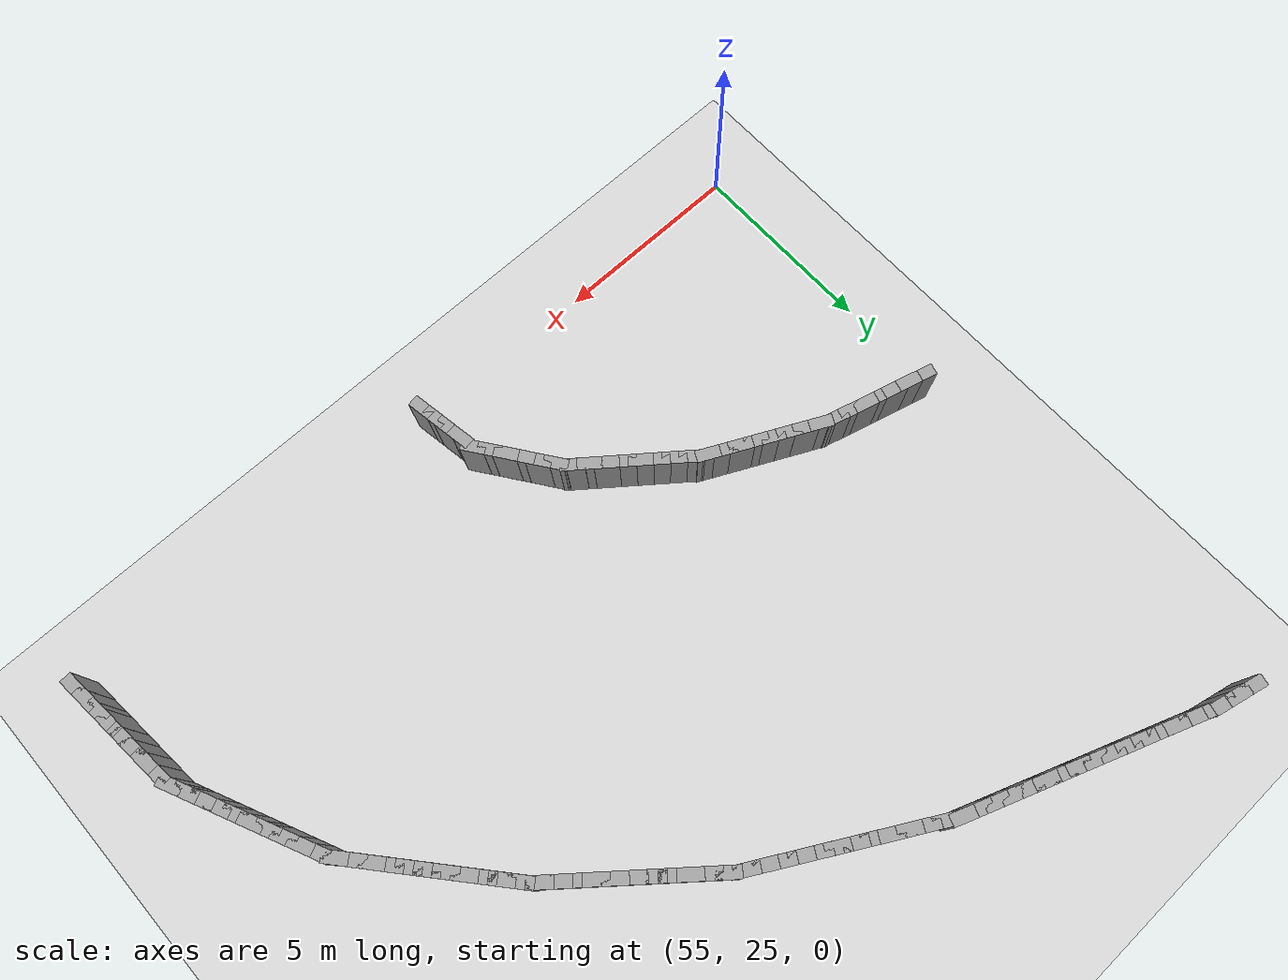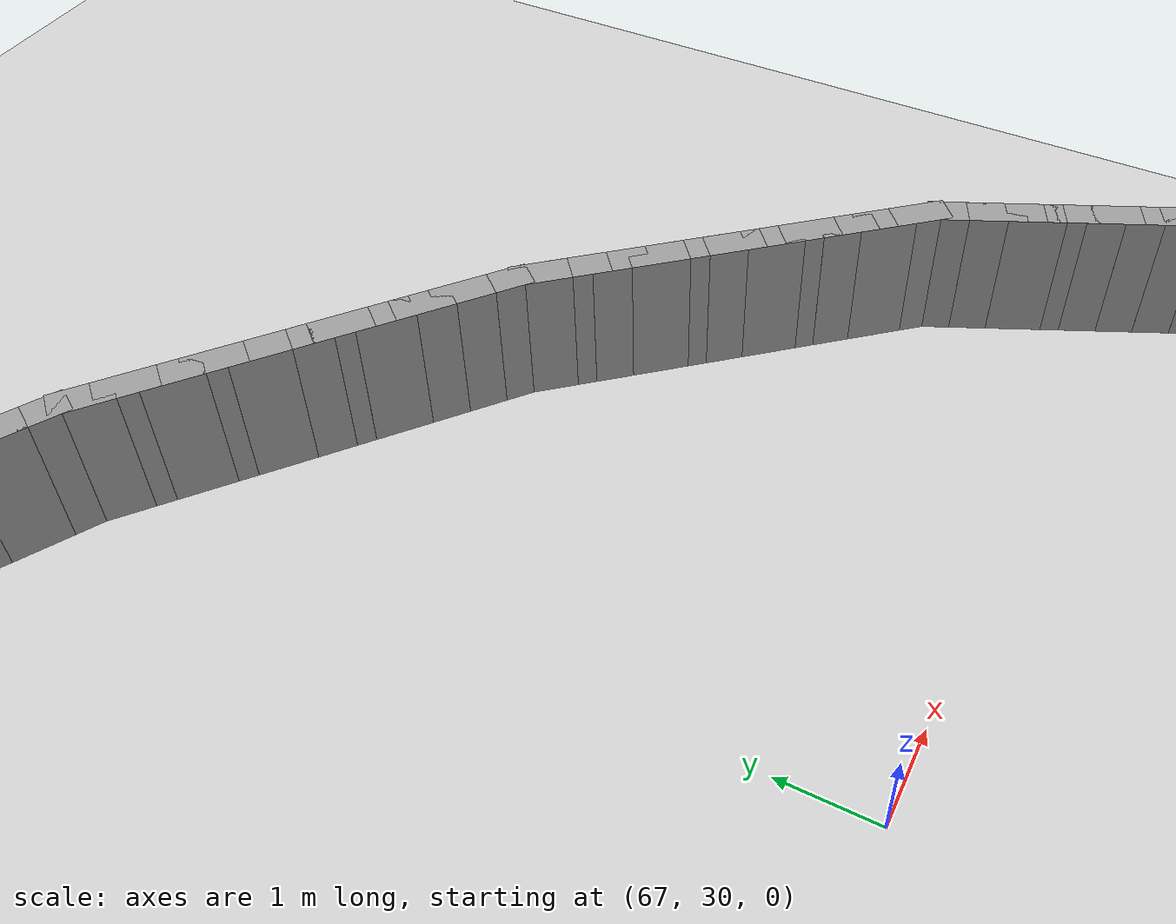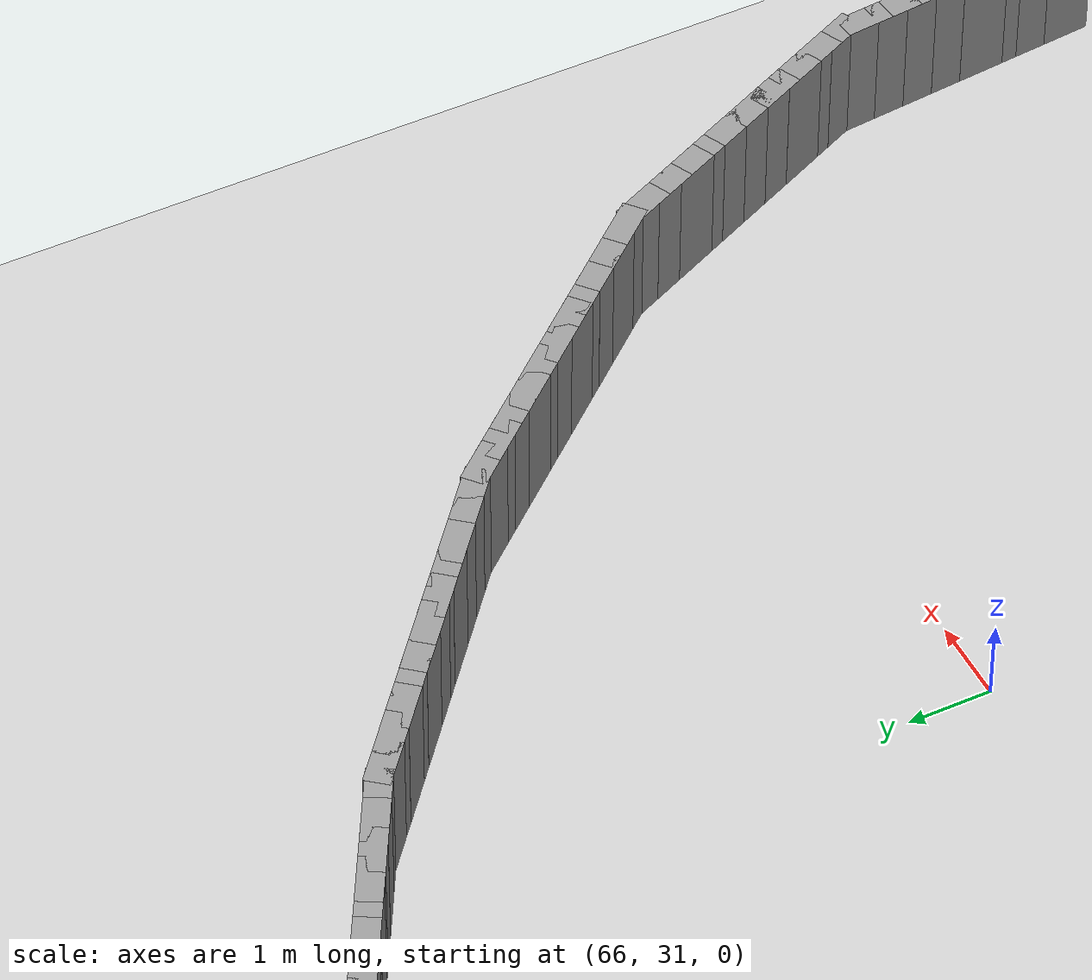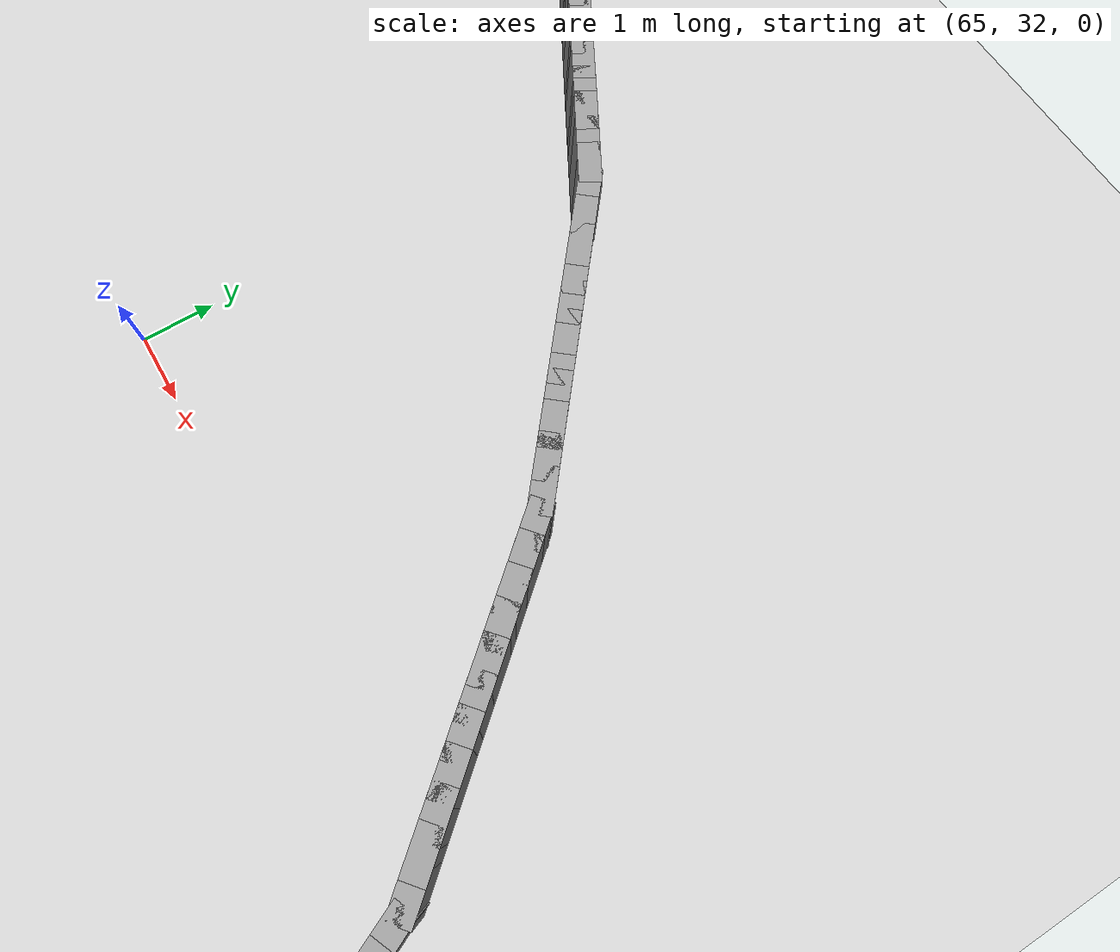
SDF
<sdf version="1.5">
 <world name="img_ellipse_obs">
  <include><uri>model://sun</uri></include>
  <include><uri>model://ground_plane</uri></include>
  <model name="wallL_226">
   <static>true</static>
   <pose>74.798 25.103 0.750 0 0 1.659</pose>
   <link name="link">
    <collision name="col"><geometry><box><size>0.600 0.300 1.500</size></box></geometry></collision>
    <visual name="vis">
     <geometry><box><size>0.600 0.300 1.500</size></box></geometry>
     <material><ambient>0.6 0.6 0.6 1</ambient><diffuse>0.6 0.6 0.6 1</diffuse></material>
    </visual>
   </link>
  </model>
  <model name="wallL_227">
   <static>true</static>
   <pose>74.763 25.502 0.750 0 0 1.659</pose>
   <link name="link">
    <collision name="col"><geometry><box><size>0.600 0.300 1.500</size></box></geometry></collision>
    <visual name="vis">
     <geometry><box><size>0.600 0.300 1.500</size></box></geometry>
     <material><ambient>0.6 0.6 0.6 1</ambient><diffuse>0.6 0.6 0.6 1</diffuse></material>
    </visual>
   </link>
  </model>
  <model name="wallL_228">
   <static>true</static>
   <pose>74.728 25.900 0.750 0 0 1.659</pose>
   <link name="link">
    <collision name="col"><geometry><box><size>0.600 0.300 1.500</size></box></geometry></collision>
    <visual name="vis">
     <geometry><box><size>0.600 0.300 1.500</size></box></geometry>
     <material><ambient>0.6 0.6 0.6 1</ambient><diffuse>0.6 0.6 0.6 1</diffuse></material>
    </visual>
   </link>
  </model>
  <model name="wallL_229">
   <static>true</static>
   <pose>74.692 26.298 0.750 0 0 1.659</pose>
   <link name="link">
    <collision name="col"><geometry><box><size>0.600 0.300 1.500</size></box></geometry></collision>
    <visual name="vis">
     <geometry><box><size>0.600 0.300 1.500</size></box></geometry>
     <material><ambient>0.6 0.6 0.6 1</ambient><diffuse>0.6 0.6 0.6 1</diffuse></material>
    </visual>
   </link>
  </model>
  <model name="wallL_230">
   <static>true</static>
   <pose>74.657 26.697 0.750 0 0 1.659</pose>
   <link name="link">
    <collision name="col"><geometry><box><size>0.600 0.300 1.500</size></box></geometry></collision>
    <visual name="vis">
     <geometry><box><size>0.600 0.300 1.500</size></box></geometry>
     <material><ambient>0.6 0.6 0.6 1</ambient><diffuse>0.6 0.6 0.6 1</diffuse></material>
    </visual>
   </link>
  </model>
  <model name="wallL_231">
   <static>true</static>
   <pose>74.622 27.095 0.750 0 0 1.659</pose>
   <link name="link">
    <collision name="col"><geometry><box><size>0.600 0.300 1.500</size></box></geometry></collision>
    <visual name="vis">
     <geometry><box><size>0.600 0.300 1.500</size></box></geometry>
     <material><ambient>0.6 0.6 0.6 1</ambient><diffuse>0.6 0.6 0.6 1</diffuse></material>
    </visual>
   </link>
  </model>
  <model name="wallL_232">
   <static>true</static>
   <pose>74.587 27.494 0.750 0 0 1.659</pose>
   <link name="link">
    <collision name="col"><geometry><box><size>0.600 0.300 1.500</size></box></geometry></collision>
    <visual name="vis">
     <geometry><box><size>0.600 0.300 1.500</size></box></geometry>
     <material><ambient>0.6 0.6 0.6 1</ambient><diffuse>0.6 0.6 0.6 1</diffuse></material>
    </visual>
   </link>
  </model>
  <model name="wallL_233">
   <static>true</static>
   <pose>74.552 27.892 0.750 0 0 1.659</pose>
   <link name="link">
    <collision name="col"><geometry><box><size>0.600 0.300 1.500</size></box></geometry></collision>
    <visual name="vis">
     <geometry><box><size>0.600 0.300 1.500</size></box></geometry>
     <material><ambient>0.6 0.6 0.6 1</ambient><diffuse>0.6 0.6 0.6 1</diffuse></material>
    </visual>
   </link>
  </model>
  <model name="wallL_234">
   <static>true</static>
   <pose>74.487 28.283 0.750 0 0 1.997</pose>
   <link name="link">
    <collision name="col"><geometry><box><size>0.600 0.300 1.500</size></box></geometry></collision>
    <visual name="vis">
     <geometry><box><size>0.600 0.300 1.500</size></box></geometry>
     <material><ambient>0.6 0.6 0.6 1</ambient><diffuse>0.6 0.6 0.6 1</diffuse></material>
    </visual>
   </link>
  </model>
  <model name="wallL_235">
   <static>true</static>
   <pose>74.322 28.647 0.750 0 0 1.997</pose>
   <link name="link">
    <collision name="col"><geometry><box><size>0.600 0.300 1.500</size></box></geometry></collision>
    <visual name="vis">
     <geometry><box><size>0.600 0.300 1.500</size></box></geometry>
     <material><ambient>0.6 0.6 0.6 1</ambient><diffuse>0.6 0.6 0.6 1</diffuse></material>
    </visual>
   </link>
  </model>
  <model name="wallL_236">
   <static>true</static>
   <pose>74.156 29.011 0.750 0 0 1.997</pose>
   <link name="link">
    <collision name="col"><geometry><box><size>0.600 0.300 1.500</size></box></geometry></collision>
    <visual name="vis">
     <geometry><box><size>0.600 0.300 1.500</size></box></geometry>
     <material><ambient>0.6 0.6 0.6 1</ambient><diffuse>0.6 0.6 0.6 1</diffuse></material>
    </visual>
   </link>
  </model>
  <model name="wallL_237">
   <static>true</static>
   <pose>73.991 29.376 0.750 0 0 1.997</pose>
   <link name="link">
    <collision name="col"><geometry><box><size>0.600 0.300 1.500</size></box></geometry></collision>
    <visual name="vis">
     <geometry><box><size>0.600 0.300 1.500</size></box></geometry>
     <material><ambient>0.6 0.6 0.6 1</ambient><diffuse>0.6 0.6 0.6 1</diffuse></material>
    </visual>
   </link>
  </model>
  <model name="wallL_238">
   <static>true</static>
   <pose>73.826 29.740 0.750 0 0 1.997</pose>
   <link name="link">
    <collision name="col"><geometry><box><size>0.600 0.300 1.500</size></box></geometry></collision>
    <visual name="vis">
     <geometry><box><size>0.600 0.300 1.500</size></box></geometry>
     <material><ambient>0.6 0.6 0.6 1</ambient><diffuse>0.6 0.6 0.6 1</diffuse></material>
    </visual>
   </link>
  </model>
  <model name="wallL_239">
   <static>true</static>
   <pose>73.661 30.104 0.750 0 0 1.997</pose>
   <link name="link">
    <collision name="col"><geometry><box><size>0.600 0.300 1.500</size></box></geometry></collision>
    <visual name="vis">
     <geometry><box><size>0.600 0.300 1.500</size></box></geometry>
     <material><ambient>0.6 0.6 0.6 1</ambient><diffuse>0.6 0.6 0.6 1</diffuse></material>
    </visual>
   </link>
  </model>
  <model name="wallL_240">
   <static>true</static>
   <pose>73.496 30.468 0.750 0 0 1.997</pose>
   <link name="link">
    <collision name="col"><geometry><box><size>0.600 0.300 1.500</size></box></geometry></collision>
    <visual name="vis">
     <geometry><box><size>0.600 0.300 1.500</size></box></geometry>
     <material><ambient>0.6 0.6 0.6 1</ambient><diffuse>0.6 0.6 0.6 1</diffuse></material>
    </visual>
   </link>
  </model>
  <model name="wallL_241">
   <static>true</static>
   <pose>73.330 30.833 0.750 0 0 1.997</pose>
   <link name="link">
    <collision name="col"><geometry><box><size>0.600 0.300 1.500</size></box></geometry></collision>
    <visual name="vis">
     <geometry><box><size>0.600 0.300 1.500</size></box></geometry>
     <material><ambient>0.6 0.6 0.6 1</ambient><diffuse>0.6 0.6 0.6 1</diffuse></material>
    </visual>
   </link>
  </model>
  <model name="wallL_242">
   <static>true</static>
   <pose>73.165 31.197 0.750 0 0 1.997</pose>
   <link name="link">
    <collision name="col"><geometry><box><size>0.600 0.300 1.500</size></box></geometry></collision>
    <visual name="vis">
     <geometry><box><size>0.600 0.300 1.500</size></box></geometry>
     <material><ambient>0.6 0.6 0.6 1</ambient><diffuse>0.6 0.6 0.6 1</diffuse></material>
    </visual>
   </link>
  </model>
  <model name="wallL_243">
   <static>true</static>
   <pose>73.000 31.561 0.750 0 0 1.997</pose>
   <link name="link">
    <collision name="col"><geometry><box><size>0.600 0.300 1.500</size></box></geometry></collision>
    <visual name="vis">
     <geometry><box><size>0.600 0.300 1.500</size></box></geometry>
     <material><ambient>0.6 0.6 0.6 1</ambient><diffuse>0.6 0.6 0.6 1</diffuse></material>
    </visual>
   </link>
  </model>
  <model name="wallL_244">
   <static>true</static>
   <pose>72.792 31.898 0.750 0 0 2.273</pose>
   <link name="link">
    <collision name="col"><geometry><box><size>0.600 0.300 1.500</size></box></geometry></collision>
    <visual name="vis">
     <geometry><box><size>0.600 0.300 1.500</size></box></geometry>
     <material><ambient>0.6 0.6 0.6 1</ambient><diffuse>0.6 0.6 0.6 1</diffuse></material>
    </visual>
   </link>
  </model>
  <model name="wallL_245">
   <static>true</static>
   <pose>72.533 32.204 0.750 0 0 2.273</pose>
   <link name="link">
    <collision name="col"><geometry><box><size>0.600 0.300 1.500</size></box></geometry></collision>
    <visual name="vis">
     <geometry><box><size>0.600 0.300 1.500</size></box></geometry>
     <material><ambient>0.6 0.6 0.6 1</ambient><diffuse>0.6 0.6 0.6 1</diffuse></material>
    </visual>
   </link>
  </model>
  <model name="wallL_246">
   <static>true</static>
   <pose>72.275 32.509 0.750 0 0 2.273</pose>
   <link name="link">
    <collision name="col"><geometry><box><size>0.600 0.300 1.500</size></box></geometry></collision>
    <visual name="vis">
     <geometry><box><size>0.600 0.300 1.500</size></box></geometry>
     <material><ambient>0.6 0.6 0.6 1</ambient><diffuse>0.6 0.6 0.6 1</diffuse></material>
    </visual>
   </link>
  </model>
  <model name="wallL_247">
   <static>true</static>
   <pose>72.017 32.815 0.750 0 0 2.273</pose>
   <link name="link">
    <collision name="col"><geometry><box><size>0.600 0.300 1.500</size></box></geometry></collision>
    <visual name="vis">
     <geometry><box><size>0.600 0.300 1.500</size></box></geometry>
     <material><ambient>0.6 0.6 0.6 1</ambient><diffuse>0.6 0.6 0.6 1</diffuse></material>
    </visual>
   </link>
  </model>
  <model name="wallL_248">
   <static>true</static>
   <pose>71.758 33.120 0.750 0 0 2.273</pose>
   <link name="link">
    <collision name="col"><geometry><box><size>0.600 0.300 1.500</size></box></geometry></collision>
    <visual name="vis">
     <geometry><box><size>0.600 0.300 1.500</size></box></geometry>
     <material><ambient>0.6 0.6 0.6 1</ambient><diffuse>0.6 0.6 0.6 1</diffuse></material>
    </visual>
   </link>
  </model>
  <model name="wallL_249">
   <static>true</static>
   <pose>71.500 33.425 0.750 0 0 2.273</pose>
   <link name="link">
    <collision name="col"><geometry><box><size>0.600 0.300 1.500</size></box></geometry></collision>
    <visual name="vis">
     <geometry><box><size>0.600 0.300 1.500</size></box></geometry>
     <material><ambient>0.6 0.6 0.6 1</ambient><diffuse>0.6 0.6 0.6 1</diffuse></material>
    </visual>
   </link>
  </model>
  <model name="wallL_250">
   <static>true</static>
   <pose>71.242 33.731 0.750 0 0 2.273</pose>
   <link name="link">
    <collision name="col"><geometry><box><size>0.600 0.300 1.500</size></box></geometry></collision>
    <visual name="vis">
     <geometry><box><size>0.600 0.300 1.500</size></box></geometry>
     <material><ambient>0.6 0.6 0.6 1</ambient><diffuse>0.6 0.6 0.6 1</diffuse></material>
    </visual>
   </link>
  </model>
  <model name="wallL_251">
   <static>true</static>
   <pose>70.983 34.036 0.750 0 0 2.273</pose>
   <link name="link">
    <collision name="col"><geometry><box><size>0.600 0.300 1.500</size></box></geometry></collision>
    <visual name="vis">
     <geometry><box><size>0.600 0.300 1.500</size></box></geometry>
     <material><ambient>0.6 0.6 0.6 1</ambient><diffuse>0.6 0.6 0.6 1</diffuse></material>
    </visual>
   </link>
  </model>
  <model name="wallL_252">
   <static>true</static>
   <pose>70.725 34.341 0.750 0 0 2.273</pose>
   <link name="link">
    <collision name="col"><geometry><box><size>0.600 0.300 1.500</size></box></geometry></collision>
    <visual name="vis">
     <geometry><box><size>0.600 0.300 1.500</size></box></geometry>
     <material><ambient>0.6 0.6 0.6 1</ambient><diffuse>0.6 0.6 0.6 1</diffuse></material>
    </visual>
   </link>
  </model>
  <model name="wallL_253">
   <static>true</static>
   <pose>70.467 34.647 0.750 0 0 2.273</pose>
   <link name="link">
    <collision name="col"><geometry><box><size>0.600 0.300 1.500</size></box></geometry></collision>
    <visual name="vis">
     <geometry><box><size>0.600 0.300 1.500</size></box></geometry>
     <material><ambient>0.6 0.6 0.6 1</ambient><diffuse>0.6 0.6 0.6 1</diffuse></material>
    </visual>
   </link>
  </model>
  <model name="wallL_254">
   <static>true</static>
   <pose>70.208 34.952 0.750 0 0 2.273</pose>
   <link name="link">
    <collision name="col"><geometry><box><size>0.600 0.300 1.500</size></box></geometry></collision>
    <visual name="vis">
     <geometry><box><size>0.600 0.300 1.500</size></box></geometry>
     <material><ambient>0.6 0.6 0.6 1</ambient><diffuse>0.6 0.6 0.6 1</diffuse></material>
    </visual>
   </link>
  </model>
  <model name="wallL_255">
   <static>true</static>
   <pose>69.924 35.231 0.750 0 0 2.446</pose>
   <link name="link">
    <collision name="col"><geometry><box><size>0.600 0.300 1.500</size></box></geometry></collision>
    <visual name="vis">
     <geometry><box><size>0.600 0.300 1.500</size></box></geometry>
     <material><ambient>0.6 0.6 0.6 1</ambient><diffuse>0.6 0.6 0.6 1</diffuse></material>
    </visual>
   </link>
  </model>
  <model name="wallL_256">
   <static>true</static>
   <pose>69.616 35.488 0.750 0 0 2.446</pose>
   <link name="link">
    <collision name="col"><geometry><box><size>0.600 0.300 1.500</size></box></geometry></collision>
    <visual name="vis">
     <geometry><box><size>0.600 0.300 1.500</size></box></geometry>
     <material><ambient>0.6 0.6 0.6 1</ambient><diffuse>0.6 0.6 0.6 1</diffuse></material>
    </visual>
   </link>
  </model>
  <model name="wallL_257">
   <static>true</static>
   <pose>69.309 35.744 0.750 0 0 2.446</pose>
   <link name="link">
    <collision name="col"><geometry><box><size>0.600 0.300 1.500</size></box></geometry></collision>
    <visual name="vis">
     <geometry><box><size>0.600 0.300 1.500</size></box></geometry>
     <material><ambient>0.6 0.6 0.6 1</ambient><diffuse>0.6 0.6 0.6 1</diffuse></material>
    </visual>
   </link>
  </model>
  <model name="wallL_258">
   <static>true</static>
   <pose>69.002 36.000 0.750 0 0 2.446</pose>
   <link name="link">
    <collision name="col"><geometry><box><size>0.600 0.300 1.500</size></box></geometry></collision>
    <visual name="vis">
     <geometry><box><size>0.600 0.300 1.500</size></box></geometry>
     <material><ambient>0.6 0.6 0.6 1</ambient><diffuse>0.6 0.6 0.6 1</diffuse></material>
    </visual>
   </link>
  </model>
  <model name="wallL_259">
   <static>true</static>
   <pose>68.695 36.257 0.750 0 0 2.446</pose>
   <link name="link">
    <collision name="col"><geometry><box><size>0.600 0.300 1.500</size></box></geometry></collision>
    <visual name="vis">
     <geometry><box><size>0.600 0.300 1.500</size></box></geometry>
     <material><ambient>0.6 0.6 0.6 1</ambient><diffuse>0.6 0.6 0.6 1</diffuse></material>
    </visual>
   </link>
  </model>
  <model name="wallL_260">
   <static>true</static>
   <pose>68.388 36.513 0.750 0 0 2.446</pose>
   <link name="link">
    <collision name="col"><geometry><box><size>0.600 0.300 1.500</size></box></geometry></collision>
    <visual name="vis">
     <geometry><box><size>0.600 0.300 1.500</size></box></geometry>
     <material><ambient>0.6 0.6 0.6 1</ambient><diffuse>0.6 0.6 0.6 1</diffuse></material>
    </visual>
   </link>
  </model>
  <model name="wallL_261">
   <static>true</static>
   <pose>68.081 36.769 0.750 0 0 2.446</pose>
   <link name="link">
    <collision name="col"><geometry><box><size>0.600 0.300 1.500</size></box></geometry></collision>
    <visual name="vis">
     <geometry><box><size>0.600 0.300 1.500</size></box></geometry>
     <material><ambient>0.6 0.6 0.6 1</ambient><diffuse>0.6 0.6 0.6 1</diffuse></material>
    </visual>
   </link>
  </model>
  <model name="wallL_262">
   <static>true</static>
   <pose>67.774 37.026 0.750 0 0 2.446</pose>
   <link name="link">
    <collision name="col"><geometry><box><size>0.600 0.300 1.500</size></box></geometry></collision>
    <visual name="vis">
     <geometry><box><size>0.600 0.300 1.500</size></box></geometry>
     <material><ambient>0.6 0.6 0.6 1</ambient><diffuse>0.6 0.6 0.6 1</diffuse></material>
    </visual>
   </link>
  </model>
  <model name="wallL_263">
   <static>true</static>
   <pose>67.467 37.282 0.750 0 0 2.446</pose>
   <link name="link">
    <collision name="col"><geometry><box><size>0.600 0.300 1.500</size></box></geometry></collision>
    <visual name="vis">
     <geometry><box><size>0.600 0.300 1.500</size></box></geometry>
     <material><ambient>0.6 0.6 0.6 1</ambient><diffuse>0.6 0.6 0.6 1</diffuse></material>
    </visual>
   </link>
  </model>
  <model name="wallL_264">
   <static>true</static>
   <pose>67.160 37.539 0.750 0 0 2.446</pose>
   <link name="link">
    <collision name="col"><geometry><box><size>0.600 0.300 1.500</size></box></geometry></collision>
    <visual name="vis">
     <geometry><box><size>0.600 0.300 1.500</size></box></geometry>
     <material><ambient>0.6 0.6 0.6 1</ambient><diffuse>0.6 0.6 0.6 1</diffuse></material>
    </visual>
   </link>
  </model>
  <model name="wallL_265">
   <static>true</static>
   <pose>66.853 37.795 0.750 0 0 2.446</pose>
   <link name="link">
    <collision name="col"><geometry><box><size>0.600 0.300 1.500</size></box></geometry></collision>
    <visual name="vis">
     <geometry><box><size>0.600 0.300 1.500</size></box></geometry>
     <material><ambient>0.6 0.6 0.6 1</ambient><diffuse>0.6 0.6 0.6 1</diffuse></material>
    </visual>
   </link>
  </model>
  <model name="wallL_266">
   <static>true</static>
   <pose>66.524 38.020 0.750 0 0 2.625</pose>
   <link name="link">
    <collision name="col"><geometry><box><size>0.600 0.300 1.500</size></box></geometry></collision>
    <visual name="vis">
     <geometry><box><size>0.600 0.300 1.500</size></box></geometry>
     <material><ambient>0.6 0.6 0.6 1</ambient><diffuse>0.6 0.6 0.6 1</diffuse></material>
    </visual>
   </link>
  </model>
  <model name="wallL_267">
   <static>true</static>
   <pose>66.176 38.217 0.750 0 0 2.625</pose>
   <link name="link">
    <collision name="col"><geometry><box><size>0.600 0.300 1.500</size></box></geometry></collision>
    <visual name="vis">
     <geometry><box><size>0.600 0.300 1.500</size></box></geometry>
     <material><ambient>0.6 0.6 0.6 1</ambient><diffuse>0.6 0.6 0.6 1</diffuse></material>
    </visual>
   </link>
  </model>
  <model name="wallL_268">
   <static>true</static>
   <pose>65.829 38.415 0.750 0 0 2.625</pose>
   <link name="link">
    <collision name="col"><geometry><box><size>0.600 0.300 1.500</size></box></geometry></collision>
    <visual name="vis">
     <geometry><box><size>0.600 0.300 1.500</size></box></geometry>
     <material><ambient>0.6 0.6 0.6 1</ambient><diffuse>0.6 0.6 0.6 1</diffuse></material>
    </visual>
   </link>
  </model>
  <model name="wallL_269">
   <static>true</static>
   <pose>65.481 38.613 0.750 0 0 2.625</pose>
   <link name="link">
    <collision name="col"><geometry><box><size>0.600 0.300 1.500</size></box></geometry></collision>
    <visual name="vis">
     <geometry><box><size>0.600 0.300 1.500</size></box></geometry>
     <material><ambient>0.6 0.6 0.6 1</ambient><diffuse>0.6 0.6 0.6 1</diffuse></material>
    </visual>
   </link>
  </model>
  <model name="wallL_270">
   <static>true</static>
   <pose>65.133 38.810 0.750 0 0 2.625</pose>
   <link name="link">
    <collision name="col"><geometry><box><size>0.600 0.300 1.500</size></box></geometry></collision>
    <visual name="vis">
     <geometry><box><size>0.600 0.300 1.500</size></box></geometry>
     <material><ambient>0.6 0.6 0.6 1</ambient><diffuse>0.6 0.6 0.6 1</diffuse></material>
    </visual>
   </link>
  </model>
  <model name="wallL_271">
   <static>true</static>
   <pose>64.785 39.008 0.750 0 0 2.625</pose>
   <link name="link">
    <collision name="col"><geometry><box><size>0.600 0.300 1.500</size></box></geometry></collision>
    <visual name="vis">
     <geometry><box><size>0.600 0.300 1.500</size></box></geometry>
     <material><ambient>0.6 0.6 0.6 1</ambient><diffuse>0.6 0.6 0.6 1</diffuse></material>
    </visual>
   </link>
  </model>
  <model name="wallL_272">
   <static>true</static>
   <pose>64.438 39.205 0.750 0 0 2.625</pose>
   <link name="link">
    <collision name="col"><geometry><box><size>0.600 0.300 1.500</size></box></geometry></collision>
    <visual name="vis">
     <geometry><box><size>0.600 0.300 1.500</size></box></geometry>
     <material><ambient>0.6 0.6 0.6 1</ambient><diffuse>0.6 0.6 0.6 1</diffuse></material>
    </visual>
   </link>
  </model>
  <model name="wallL_273">
   <static>true</static>
   <pose>64.090 39.403 0.750 0 0 2.625</pose>
   <link name="link">
    <collision name="col"><geometry><box><size>0.600 0.300 1.500</size></box></geometry></collision>
    <visual name="vis">
     <geometry><box><size>0.600 0.300 1.500</size></box></geometry>
     <material><ambient>0.6 0.6 0.6 1</ambient><diffuse>0.6 0.6 0.6 1</diffuse></material>
    </visual>
   </link>
  </model>
  <model name="wallL_274">
   <static>true</static>
   <pose>63.742 39.601 0.750 0 0 2.625</pose>
   <link name="link">
    <collision name="col"><geometry><box><size>0.600 0.300 1.500</size></box></geometry></collision>
    <visual name="vis">
     <geometry><box><size>0.600 0.300 1.500</size></box></geometry>
     <material><ambient>0.6 0.6 0.6 1</ambient><diffuse>0.6 0.6 0.6 1</diffuse></material>
    </visual>
   </link>
  </model>
  <model name="wallL_275">
   <static>true</static>
   <pose>63.394 39.798 0.750 0 0 2.625</pose>
   <link name="link">
    <collision name="col"><geometry><box><size>0.600 0.300 1.500</size></box></geometry></collision>
    <visual name="vis">
     <geometry><box><size>0.600 0.300 1.500</size></box></geometry>
     <material><ambient>0.6 0.6 0.6 1</ambient><diffuse>0.6 0.6 0.6 1</diffuse></material>
    </visual>
   </link>
  </model>
  <model name="wallL_276">
   <static>true</static>
   <pose>63.047 39.996 0.750 0 0 2.625</pose>
   <link name="link">
    <collision name="col"><geometry><box><size>0.600 0.300 1.500</size></box></geometry></collision>
    <visual name="vis">
     <geometry><box><size>0.600 0.300 1.500</size></box></geometry>
     <material><ambient>0.6 0.6 0.6 1</ambient><diffuse>0.6 0.6 0.6 1</diffuse></material>
    </visual>
   </link>
  </model>
  <model name="wallL_277">
   <static>true</static>
   <pose>62.699 40.194 0.750 0 0 2.625</pose>
   <link name="link">
    <collision name="col"><geometry><box><size>0.600 0.300 1.500</size></box></geometry></collision>
    <visual name="vis">
     <geometry><box><size>0.600 0.300 1.500</size></box></geometry>
     <material><ambient>0.6 0.6 0.6 1</ambient><diffuse>0.6 0.6 0.6 1</diffuse></material>
    </visual>
   </link>
  </model>
  <model name="wallL_278">
   <static>true</static>
   <pose>62.349 40.387 0.750 0 0 2.776</pose>
   <link name="link">
    <collision name="col"><geometry><box><size>0.600 0.300 1.500</size></box></geometry></collision>
    <visual name="vis">
     <geometry><box><size>0.600 0.300 1.500</size></box></geometry>
     <material><ambient>0.6 0.6 0.6 1</ambient><diffuse>0.6 0.6 0.6 1</diffuse></material>
    </visual>
   </link>
  </model>
  <model name="wallL_279">
   <static>true</static>
   <pose>61.975 40.530 0.750 0 0 2.776</pose>
   <link name="link">
    <collision name="col"><geometry><box><size>0.600 0.300 1.500</size></box></geometry></collision>
    <visual name="vis">
     <geometry><box><size>0.600 0.300 1.500</size></box></geometry>
     <material><ambient>0.6 0.6 0.6 1</ambient><diffuse>0.6 0.6 0.6 1</diffuse></material>
    </visual>
   </link>
  </model>
  <model name="wallL_280">
   <static>true</static>
   <pose>61.602 40.673 0.750 0 0 2.776</pose>
   <link name="link">
    <collision name="col"><geometry><box><size>0.600 0.300 1.500</size></box></geometry></collision>
    <visual name="vis">
     <geometry><box><size>0.600 0.300 1.500</size></box></geometry>
     <material><ambient>0.6 0.6 0.6 1</ambient><diffuse>0.6 0.6 0.6 1</diffuse></material>
    </visual>
   </link>
  </model>
  <model name="wallL_281">
   <static>true</static>
   <pose>61.228 40.815 0.750 0 0 2.776</pose>
   <link name="link">
    <collision name="col"><geometry><box><size>0.600 0.300 1.500</size></box></geometry></collision>
    <visual name="vis">
     <geometry><box><size>0.600 0.300 1.500</size></box></geometry>
     <material><ambient>0.6 0.6 0.6 1</ambient><diffuse>0.6 0.6 0.6 1</diffuse></material>
    </visual>
   </link>
  </model>
  <model name="wallL_282">
   <static>true</static>
   <pose>60.854 40.958 0.750 0 0 2.776</pose>
   <link name="link">
    <collision name="col"><geometry><box><size>0.600 0.300 1.500</size></box></geometry></collision>
    <visual name="vis">
     <geometry><box><size>0.600 0.300 1.500</size></box></geometry>
     <material><ambient>0.6 0.6 0.6 1</ambient><diffuse>0.6 0.6 0.6 1</diffuse></material>
    </visual>
   </link>
  </model>
  <model name="wallL_283">
   <static>true</static>
   <pose>60.481 41.101 0.750 0 0 2.776</pose>
   <link name="link">
    <collision name="col"><geometry><box><size>0.600 0.300 1.500</size></box></geometry></collision>
    <visual name="vis">
     <geometry><box><size>0.600 0.300 1.500</size></box></geometry>
     <material><ambient>0.6 0.6 0.6 1</ambient><diffuse>0.6 0.6 0.6 1</diffuse></material>
    </visual>
   </link>
  </model>
  <model name="wallL_284">
   <static>true</static>
   <pose>60.107 41.244 0.750 0 0 2.776</pose>
   <link name="link">
    <collision name="col"><geometry><box><size>0.600 0.300 1.500</size></box></geometry></collision>
    <visual name="vis">
     <geometry><box><size>0.600 0.300 1.500</size></box></geometry>
     <material><ambient>0.6 0.6 0.6 1</ambient><diffuse>0.6 0.6 0.6 1</diffuse></material>
    </visual>
   </link>
  </model>
  <model name="wallL_285">
   <static>true</static>
   <pose>59.734 41.387 0.750 0 0 2.776</pose>
   <link name="link">
    <collision name="col"><geometry><box><size>0.600 0.300 1.500</size></box></geometry></collision>
    <visual name="vis">
     <geometry><box><size>0.600 0.300 1.500</size></box></geometry>
     <material><ambient>0.6 0.6 0.6 1</ambient><diffuse>0.6 0.6 0.6 1</diffuse></material>
    </visual>
   </link>
  </model>
  <model name="wallL_286">
   <static>true</static>
   <pose>59.360 41.530 0.750 0 0 2.776</pose>
   <link name="link">
    <collision name="col"><geometry><box><size>0.600 0.300 1.500</size></box></geometry></collision>
    <visual name="vis">
     <geometry><box><size>0.600 0.300 1.500</size></box></geometry>
     <material><ambient>0.6 0.6 0.6 1</ambient><diffuse>0.6 0.6 0.6 1</diffuse></material>
    </visual>
   </link>
  </model>
  <model name="wallL_287">
   <static>true</static>
   <pose>58.986 41.673 0.750 0 0 2.776</pose>
   <link name="link">
    <collision name="col"><geometry><box><size>0.600 0.300 1.500</size></box></geometry></collision>
    <visual name="vis">
     <geometry><box><size>0.600 0.300 1.500</size></box></geometry>
     <material><ambient>0.6 0.6 0.6 1</ambient><diffuse>0.6 0.6 0.6 1</diffuse></material>
    </visual>
   </link>
  </model>
  <model name="wallL_288">
   <static>true</static>
   <pose>58.613 41.816 0.750 0 0 2.776</pose>
   <link name="link">
    <collision name="col"><geometry><box><size>0.600 0.300 1.500</size></box></geometry></collision>
    <visual name="vis">
     <geometry><box><size>0.600 0.300 1.500</size></box></geometry>
     <material><ambient>0.6 0.6 0.6 1</ambient><diffuse>0.6 0.6 0.6 1</diffuse></material>
    </visual>
   </link>
  </model>
  <model name="wallL_289">
   <static>true</static>
   <pose>58.239 41.958 0.750 0 0 2.776</pose>
   <link name="link">
    <collision name="col"><geometry><box><size>0.600 0.300 1.500</size></box></geometry></collision>
    <visual name="vis">
     <geometry><box><size>0.600 0.300 1.500</size></box></geometry>
     <material><ambient>0.6 0.6 0.6 1</ambient><diffuse>0.6 0.6 0.6 1</diffuse></material>
    </visual>
   </link>
  </model>
  <model name="wallL_290">
   <static>true</static>
   <pose>57.866 42.101 0.750 0 0 2.776</pose>
   <link name="link">
    <collision name="col"><geometry><box><size>0.600 0.300 1.500</size></box></geometry></collision>
    <visual name="vis">
     <geometry><box><size>0.600 0.300 1.500</size></box></geometry>
     <material><ambient>0.6 0.6 0.6 1</ambient><diffuse>0.6 0.6 0.6 1</diffuse></material>
    </visual>
   </link>
  </model>
  <model name="wallL_291">
   <static>true</static>
   <pose>57.492 42.244 0.750 0 0 2.776</pose>
   <link name="link">
    <collision name="col"><geometry><box><size>0.600 0.300 1.500</size></box></geometry></collision>
    <visual name="vis">
     <geometry><box><size>0.600 0.300 1.500</size></box></geometry>
     <material><ambient>0.6 0.6 0.6 1</ambient><diffuse>0.6 0.6 0.6 1</diffuse></material>
    </visual>
   </link>
  </model>
  <model name="wallL_292">
   <static>true</static>
   <pose>57.118 42.387 0.750 0 0 2.776</pose>
   <link name="link">
    <collision name="col"><geometry><box><size>0.600 0.300 1.500</size></box></geometry></collision>
    <visual name="vis">
     <geometry><box><size>0.600 0.300 1.500</size></box></geometry>
     <material><ambient>0.6 0.6 0.6 1</ambient><diffuse>0.6 0.6 0.6 1</diffuse></material>
    </visual>
   </link>
  </model>
  <model name="wallL_293">
   <static>true</static>
   <pose>56.745 42.530 0.750 0 0 2.776</pose>
   <link name="link">
    <collision name="col"><geometry><box><size>0.600 0.300 1.500</size></box></geometry></collision>
    <visual name="vis">
     <geometry><box><size>0.600 0.300 1.500</size></box></geometry>
     <material><ambient>0.6 0.6 0.6 1</ambient><diffuse>0.6 0.6 0.6 1</diffuse></material>
    </visual>
   </link>
  </model>
  <model name="wallL_294">
   <static>true</static>
   <pose>56.366 42.656 0.750 0 0 2.910</pose>
   <link name="link">
    <collision name="col"><geometry><box><size>0.600 0.300 1.500</size></box></geometry></collision>
    <visual name="vis">
     <geometry><box><size>0.600 0.300 1.500</size></box></geometry>
     <material><ambient>0.6 0.6 0.6 1</ambient><diffuse>0.6 0.6 0.6 1</diffuse></material>
    </visual>
   </link>
  </model>
  <model name="wallL_295">
   <static>true</static>
   <pose>55.977 42.748 0.750 0 0 2.910</pose>
   <link name="link">
    <collision name="col"><geometry><box><size>0.600 0.300 1.500</size></box></geometry></collision>
    <visual name="vis">
     <geometry><box><size>0.600 0.300 1.500</size></box></geometry>
     <material><ambient>0.6 0.6 0.6 1</ambient><diffuse>0.6 0.6 0.6 1</diffuse></material>
    </visual>
   </link>
  </model>
  <model name="wallL_296">
   <static>true</static>
   <pose>55.587 42.840 0.750 0 0 2.910</pose>
   <link name="link">
    <collision name="col"><geometry><box><size>0.600 0.300 1.500</size></box></geometry></collision>
    <visual name="vis">
     <geometry><box><size>0.600 0.300 1.500</size></box></geometry>
     <material><ambient>0.6 0.6 0.6 1</ambient><diffuse>0.6 0.6 0.6 1</diffuse></material>
    </visual>
   </link>
  </model>
  <model name="wallR_111">
   <static>true</static>
   <pose>55.536 32.713 0.750 0 0 -0.269</pose>
   <link name="link">
    <collision name="col"><geometry><box><size>0.600 0.300 1.500</size></box></geometry></collision>
    <visual name="vis">
     <geometry><box><size>0.600 0.300 1.500</size></box></geometry>
     <material><ambient>0.6 0.6 0.6 1</ambient><diffuse>0.6 0.6 0.6 1</diffuse></material>
    </visual>
   </link>
  </model>
  <model name="wallR_112">
   <static>true</static>
   <pose>55.921 32.607 0.750 0 0 -0.269</pose>
   <link name="link">
    <collision name="col"><geometry><box><size>0.600 0.300 1.500</size></box></geometry></collision>
    <visual name="vis">
     <geometry><box><size>0.600 0.300 1.500</size></box></geometry>
     <material><ambient>0.6 0.6 0.6 1</ambient><diffuse>0.6 0.6 0.6 1</diffuse></material>
    </visual>
   </link>
  </model>
  <model name="wallR_113">
   <static>true</static>
   <pose>56.307 32.501 0.750 0 0 -0.269</pose>
   <link name="link">
    <collision name="col"><geometry><box><size>0.600 0.300 1.500</size></box></geometry></collision>
    <visual name="vis">
     <geometry><box><size>0.600 0.300 1.500</size></box></geometry>
     <material><ambient>0.6 0.6 0.6 1</ambient><diffuse>0.6 0.6 0.6 1</diffuse></material>
    </visual>
   </link>
  </model>
  <model name="wallR_114">
   <static>true</static>
   <pose>56.693 32.394 0.750 0 0 -0.269</pose>
   <link name="link">
    <collision name="col"><geometry><box><size>0.600 0.300 1.500</size></box></geometry></collision>
    <visual name="vis">
     <geometry><box><size>0.600 0.300 1.500</size></box></geometry>
     <material><ambient>0.6 0.6 0.6 1</ambient><diffuse>0.6 0.6 0.6 1</diffuse></material>
    </visual>
   </link>
  </model>
  <model name="wallR_115">
   <static>true</static>
   <pose>57.078 32.288 0.750 0 0 -0.269</pose>
   <link name="link">
    <collision name="col"><geometry><box><size>0.600 0.300 1.500</size></box></geometry></collision>
    <visual name="vis">
     <geometry><box><size>0.600 0.300 1.500</size></box></geometry>
     <material><ambient>0.6 0.6 0.6 1</ambient><diffuse>0.6 0.6 0.6 1</diffuse></material>
    </visual>
   </link>
  </model>
  <model name="wallR_116">
   <static>true</static>
   <pose>57.464 32.181 0.750 0 0 -0.269</pose>
   <link name="link">
    <collision name="col"><geometry><box><size>0.600 0.300 1.500</size></box></geometry></collision>
    <visual name="vis">
     <geometry><box><size>0.600 0.300 1.500</size></box></geometry>
     <material><ambient>0.6 0.6 0.6 1</ambient><diffuse>0.6 0.6 0.6 1</diffuse></material>
    </visual>
   </link>
  </model>
  <model name="wallR_117">
   <static>true</static>
   <pose>57.849 32.075 0.750 0 0 -0.269</pose>
   <link name="link">
    <collision name="col"><geometry><box><size>0.600 0.300 1.500</size></box></geometry></collision>
    <visual name="vis">
     <geometry><box><size>0.600 0.300 1.500</size></box></geometry>
     <material><ambient>0.6 0.6 0.6 1</ambient><diffuse>0.6 0.6 0.6 1</diffuse></material>
    </visual>
   </link>
  </model>
  <model name="wallR_118">
   <static>true</static>
   <pose>58.220 31.930 0.750 0 0 -0.463</pose>
   <link name="link">
    <collision name="col"><geometry><box><size>0.600 0.300 1.500</size></box></geometry></collision>
    <visual name="vis">
     <geometry><box><size>0.600 0.300 1.500</size></box></geometry>
     <material><ambient>0.6 0.6 0.6 1</ambient><diffuse>0.6 0.6 0.6 1</diffuse></material>
    </visual>
   </link>
  </model>
  <model name="wallR_119">
   <static>true</static>
   <pose>58.578 31.752 0.750 0 0 -0.463</pose>
   <link name="link">
    <collision name="col"><geometry><box><size>0.600 0.300 1.500</size></box></geometry></collision>
    <visual name="vis">
     <geometry><box><size>0.600 0.300 1.500</size></box></geometry>
     <material><ambient>0.6 0.6 0.6 1</ambient><diffuse>0.6 0.6 0.6 1</diffuse></material>
    </visual>
   </link>
  </model>
  <model name="wallR_120">
   <static>true</static>
   <pose>58.936 31.573 0.750 0 0 -0.463</pose>
   <link name="link">
    <collision name="col"><geometry><box><size>0.600 0.300 1.500</size></box></geometry></collision>
    <visual name="vis">
     <geometry><box><size>0.600 0.300 1.500</size></box></geometry>
     <material><ambient>0.6 0.6 0.6 1</ambient><diffuse>0.6 0.6 0.6 1</diffuse></material>
    </visual>
   </link>
  </model>
  <model name="wallR_121">
   <static>true</static>
   <pose>59.294 31.394 0.750 0 0 -0.463</pose>
   <link name="link">
    <collision name="col"><geometry><box><size>0.600 0.300 1.500</size></box></geometry></collision>
    <visual name="vis">
     <geometry><box><size>0.600 0.300 1.500</size></box></geometry>
     <material><ambient>0.6 0.6 0.6 1</ambient><diffuse>0.6 0.6 0.6 1</diffuse></material>
    </visual>
   </link>
  </model>
  <model name="wallR_122">
   <static>true</static>
   <pose>59.652 31.215 0.750 0 0 -0.463</pose>
   <link name="link">
    <collision name="col"><geometry><box><size>0.600 0.300 1.500</size></box></geometry></collision>
    <visual name="vis">
     <geometry><box><size>0.600 0.300 1.500</size></box></geometry>
     <material><ambient>0.6 0.6 0.6 1</ambient><diffuse>0.6 0.6 0.6 1</diffuse></material>
    </visual>
   </link>
  </model>
  <model name="wallR_123">
   <static>true</static>
   <pose>60.009 31.037 0.750 0 0 -0.463</pose>
   <link name="link">
    <collision name="col"><geometry><box><size>0.600 0.300 1.500</size></box></geometry></collision>
    <visual name="vis">
     <geometry><box><size>0.600 0.300 1.500</size></box></geometry>
     <material><ambient>0.6 0.6 0.6 1</ambient><diffuse>0.6 0.6 0.6 1</diffuse></material>
    </visual>
   </link>
  </model>
  <model name="wallR_124">
   <static>true</static>
   <pose>60.367 30.858 0.750 0 0 -0.463</pose>
   <link name="link">
    <collision name="col"><geometry><box><size>0.600 0.300 1.500</size></box></geometry></collision>
    <visual name="vis">
     <geometry><box><size>0.600 0.300 1.500</size></box></geometry>
     <material><ambient>0.6 0.6 0.6 1</ambient><diffuse>0.6 0.6 0.6 1</diffuse></material>
    </visual>
   </link>
  </model>
  <model name="wallR_125">
   <static>true</static>
   <pose>60.725 30.679 0.750 0 0 -0.463</pose>
   <link name="link">
    <collision name="col"><geometry><box><size>0.600 0.300 1.500</size></box></geometry></collision>
    <visual name="vis">
     <geometry><box><size>0.600 0.300 1.500</size></box></geometry>
     <material><ambient>0.6 0.6 0.6 1</ambient><diffuse>0.6 0.6 0.6 1</diffuse></material>
    </visual>
   </link>
  </model>
  <model name="wallR_126">
   <static>true</static>
   <pose>61.056 30.457 0.750 0 0 -0.674</pose>
   <link name="link">
    <collision name="col"><geometry><box><size>0.600 0.300 1.500</size></box></geometry></collision>
    <visual name="vis">
     <geometry><box><size>0.600 0.300 1.500</size></box></geometry>
     <material><ambient>0.6 0.6 0.6 1</ambient><diffuse>0.6 0.6 0.6 1</diffuse></material>
    </visual>
   </link>
  </model>
  <model name="wallR_127">
   <static>true</static>
   <pose>61.368 30.208 0.750 0 0 -0.674</pose>
   <link name="link">
    <collision name="col"><geometry><box><size>0.600 0.300 1.500</size></box></geometry></collision>
    <visual name="vis">
     <geometry><box><size>0.600 0.300 1.500</size></box></geometry>
     <material><ambient>0.6 0.6 0.6 1</ambient><diffuse>0.6 0.6 0.6 1</diffuse></material>
    </visual>
   </link>
  </model>
  <model name="wallR_128">
   <static>true</static>
   <pose>61.681 29.958 0.750 0 0 -0.674</pose>
   <link name="link">
    <collision name="col"><geometry><box><size>0.600 0.300 1.500</size></box></geometry></collision>
    <visual name="vis">
     <geometry><box><size>0.600 0.300 1.500</size></box></geometry>
     <material><ambient>0.6 0.6 0.6 1</ambient><diffuse>0.6 0.6 0.6 1</diffuse></material>
    </visual>
   </link>
  </model>
  <model name="wallR_129">
   <static>true</static>
   <pose>61.993 29.709 0.750 0 0 -0.674</pose>
   <link name="link">
    <collision name="col"><geometry><box><size>0.600 0.300 1.500</size></box></geometry></collision>
    <visual name="vis">
     <geometry><box><size>0.600 0.300 1.500</size></box></geometry>
     <material><ambient>0.6 0.6 0.6 1</ambient><diffuse>0.6 0.6 0.6 1</diffuse></material>
    </visual>
   </link>
  </model>
  <model name="wallR_130">
   <static>true</static>
   <pose>62.306 29.459 0.750 0 0 -0.674</pose>
   <link name="link">
    <collision name="col"><geometry><box><size>0.600 0.300 1.500</size></box></geometry></collision>
    <visual name="vis">
     <geometry><box><size>0.600 0.300 1.500</size></box></geometry>
     <material><ambient>0.6 0.6 0.6 1</ambient><diffuse>0.6 0.6 0.6 1</diffuse></material>
    </visual>
   </link>
  </model>
  <model name="wallR_131">
   <static>true</static>
   <pose>62.619 29.210 0.750 0 0 -0.674</pose>
   <link name="link">
    <collision name="col"><geometry><box><size>0.600 0.300 1.500</size></box></geometry></collision>
    <visual name="vis">
     <geometry><box><size>0.600 0.300 1.500</size></box></geometry>
     <material><ambient>0.6 0.6 0.6 1</ambient><diffuse>0.6 0.6 0.6 1</diffuse></material>
    </visual>
   </link>
  </model>
  <model name="wallR_132">
   <static>true</static>
   <pose>62.931 28.960 0.750 0 0 -0.674</pose>
   <link name="link">
    <collision name="col"><geometry><box><size>0.600 0.300 1.500</size></box></geometry></collision>
    <visual name="vis">
     <geometry><box><size>0.600 0.300 1.500</size></box></geometry>
     <material><ambient>0.6 0.6 0.6 1</ambient><diffuse>0.6 0.6 0.6 1</diffuse></material>
    </visual>
   </link>
  </model>
  <model name="wallR_133">
   <static>true</static>
   <pose>63.244 28.711 0.750 0 0 -0.674</pose>
   <link name="link">
    <collision name="col"><geometry><box><size>0.600 0.300 1.500</size></box></geometry></collision>
    <visual name="vis">
     <geometry><box><size>0.600 0.300 1.500</size></box></geometry>
     <material><ambient>0.6 0.6 0.6 1</ambient><diffuse>0.6 0.6 0.6 1</diffuse></material>
    </visual>
   </link>
  </model>
  <model name="wallR_134">
   <static>true</static>
   <pose>63.510 28.417 0.750 0 0 -0.957</pose>
   <link name="link">
    <collision name="col"><geometry><box><size>0.600 0.300 1.500</size></box></geometry></collision>
    <visual name="vis">
     <geometry><box><size>0.600 0.300 1.500</size></box></geometry>
     <material><ambient>0.6 0.6 0.6 1</ambient><diffuse>0.6 0.6 0.6 1</diffuse></material>
    </visual>
   </link>
  </model>
  <model name="wallR_135">
   <static>true</static>
   <pose>63.741 28.091 0.750 0 0 -0.957</pose>
   <link name="link">
    <collision name="col"><geometry><box><size>0.600 0.300 1.500</size></box></geometry></collision>
    <visual name="vis">
     <geometry><box><size>0.600 0.300 1.500</size></box></geometry>
     <material><ambient>0.6 0.6 0.6 1</ambient><diffuse>0.6 0.6 0.6 1</diffuse></material>
    </visual>
   </link>
  </model>
  <model name="wallR_136">
   <static>true</static>
   <pose>63.971 27.764 0.750 0 0 -0.957</pose>
   <link name="link">
    <collision name="col"><geometry><box><size>0.600 0.300 1.500</size></box></geometry></collision>
    <visual name="vis">
     <geometry><box><size>0.600 0.300 1.500</size></box></geometry>
     <material><ambient>0.6 0.6 0.6 1</ambient><diffuse>0.6 0.6 0.6 1</diffuse></material>
    </visual>
   </link>
  </model>
  <model name="wallR_137">
   <static>true</static>
   <pose>64.202 27.437 0.750 0 0 -0.957</pose>
   <link name="link">
    <collision name="col"><geometry><box><size>0.600 0.300 1.500</size></box></geometry></collision>
    <visual name="vis">
     <geometry><box><size>0.600 0.300 1.500</size></box></geometry>
     <material><ambient>0.6 0.6 0.6 1</ambient><diffuse>0.6 0.6 0.6 1</diffuse></material>
    </visual>
   </link>
  </model>
  <model name="wallR_138">
   <static>true</static>
   <pose>64.432 27.110 0.750 0 0 -0.957</pose>
   <link name="link">
    <collision name="col"><geometry><box><size>0.600 0.300 1.500</size></box></geometry></collision>
    <visual name="vis">
     <geometry><box><size>0.600 0.300 1.500</size></box></geometry>
     <material><ambient>0.6 0.6 0.6 1</ambient><diffuse>0.6 0.6 0.6 1</diffuse></material>
    </visual>
   </link>
  </model>
  <model name="wallR_139">
   <static>true</static>
   <pose>64.663 26.783 0.750 0 0 -0.957</pose>
   <link name="link">
    <collision name="col"><geometry><box><size>0.600 0.300 1.500</size></box></geometry></collision>
    <visual name="vis">
     <geometry><box><size>0.600 0.300 1.500</size></box></geometry>
     <material><ambient>0.6 0.6 0.6 1</ambient><diffuse>0.6 0.6 0.6 1</diffuse></material>
    </visual>
   </link>
  </model>
  <model name="wallR_140">
   <static>true</static>
   <pose>64.734 26.391 0.750 0 0 -1.411</pose>
   <link name="link">
    <collision name="col"><geometry><box><size>0.600 0.300 1.500</size></box></geometry></collision>
    <visual name="vis">
     <geometry><box><size>0.600 0.300 1.500</size></box></geometry>
     <material><ambient>0.6 0.6 0.6 1</ambient><diffuse>0.6 0.6 0.6 1</diffuse></material>
    </visual>
   </link>
  </model>
  <model name="wallR_141">
   <static>true</static>
   <pose>64.798 25.996 0.750 0 0 -1.411</pose>
   <link name="link">
    <collision name="col"><geometry><box><size>0.600 0.300 1.500</size></box></geometry></collision>
    <visual name="vis">
     <geometry><box><size>0.600 0.300 1.500</size></box></geometry>
     <material><ambient>0.6 0.6 0.6 1</ambient><diffuse>0.6 0.6 0.6 1</diffuse></material>
    </visual>
   </link>
  </model>
  <model name="wallR_142">
   <static>true</static>
   <pose>64.861 25.601 0.750 0 0 -1.411</pose>
   <link name="link">
    <collision name="col"><geometry><box><size>0.600 0.300 1.500</size></box></geometry></collision>
    <visual name="vis">
     <geometry><box><size>0.600 0.300 1.500</size></box></geometry>
     <material><ambient>0.6 0.6 0.6 1</ambient><diffuse>0.6 0.6 0.6 1</diffuse></material>
    </visual>
   </link>
  </model>
  <model name="wallR_143">
   <static>true</static>
   <pose>64.925 25.206 0.750 0 0 -1.411</pose>
   <link name="link">
    <collision name="col"><geometry><box><size>0.600 0.300 1.500</size></box></geometry></collision>
    <visual name="vis">
     <geometry><box><size>0.600 0.300 1.500</size></box></geometry>
     <material><ambient>0.6 0.6 0.6 1</ambient><diffuse>0.6 0.6 0.6 1</diffuse></material>
    </visual>
   </link>
  </model>
 </world>
</sdf>
